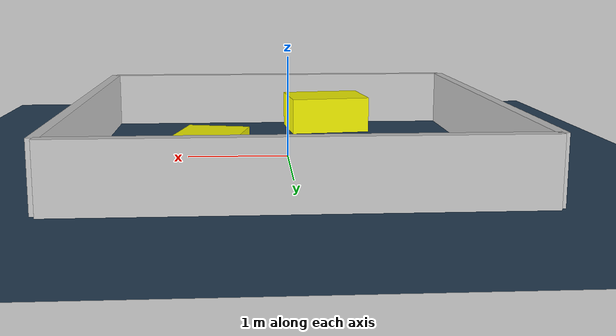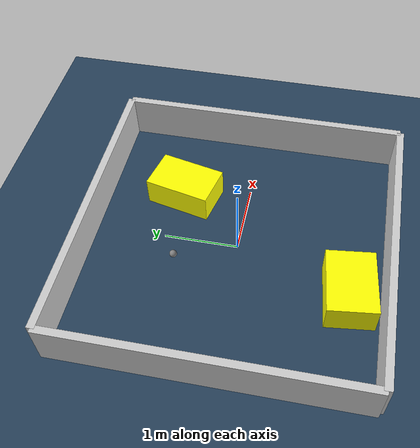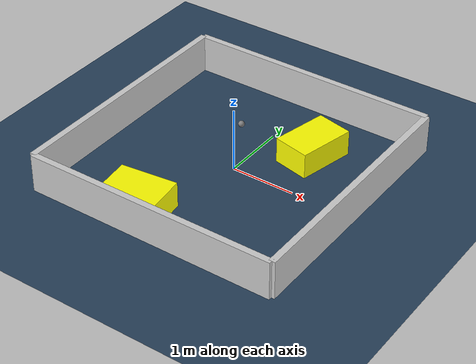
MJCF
<?xml version="1.0" ?>
<mujoco model="generated_environment">
  <option timestep="0.01" integrator="RK4" cone="elliptic"/>
  <default>
    <geom density="1"/>
  </default>
  <asset>
    <texture builtin="gradient" height="3072" rgb1="0.3 0.5 0.7" rgb2="0 0 0" type="skybox" width="512"/>
    <texture builtin="checker" height="300" mark="edge" markrgb="0.8 0.8 0.8" name="groundplane" rgb1="0.2 0.3 0.4" rgb2="0.1 0.2 0.3" type="2d" width="300"/>
    <material name="groundplane" reflectance="0.2" texrepeat="5 5" texture="groundplane" texuniform="true"/>
    <material name="robot" rgba="0.0 1.0 0.0 1"/>
  </asset>
  <worldbody>
    <light dir="0 0 -1" directional="true" pos="0 0 1.5"/>
    <geom condim="4" friction="1.0 0.005 0.001" material="groundplane" name="floor" size="0 0 0.05" type="plane"/>
    <body name="walls">
      <geom name="wall_1" condim="4" pos="-2.0 0.0 0.3" rgba="0.800000011920929 0.800000011920929 0.800000011920929 1.0" size="0.05 2.0 0.3" type="box"/>
      <geom name="wall_2" condim="4" pos="2.0 0.0 0.3" rgba="0.800000011920929 0.800000011920929 0.800000011920929 1.0" size="0.05 2.0 0.3" type="box"/>
      <geom name="wall_3" condim="4" pos="0.0 -2.0 0.3" rgba="0.800000011920929 0.800000011920929 0.800000011920929 1.0" size="2.0 0.05 0.3" type="box"/>
      <geom name="wall_4" condim="4" pos="0.0 2.0 0.3" rgba="0.800000011920929 0.800000011920929 0.800000011920929 1.0" size="2.0 0.05 0.3" type="box"/>
    </body>
    <body name="robot">
      <joint name="joint_x" type="slide" pos="0 0 0" axis="1 0 0"/>
      <joint name="joint_y" type="slide" pos="0 0 0" axis="0 1 0"/>
      <geom name="robot" type="sphere" pos="-0.41039216198136774 0.776501357173133 0.2" size="0.05" mass="5." friction="1.0 0.005 0.0001" condim="4"/>
      <site name="sensor_ball"/>
    </body>
    <body name="obstacle_1_movable">
      <geom name="obstacle_1_movable" condim="4" pos="-0.5347009544515782 -1.5323409124435943 0.2" euler="0 0 276.5595974083464" friction="1.0 0.005 0.001" rgba="1 1 0 1" size="0.3205188519145338 0.44801745038346275 0.2" type="box" mass="0.1"/>
      <joint type="free"/>
    </body>
    <body name="obstacle_2_movable">
      <geom name="obstacle_2_movable" condim="4" pos="0.7658064904760136 0.8961313764615777 0.2" euler="0 0 77.53623296022036" friction="1.0 0.005 0.001" rgba="1 1 0 1" size="0.4506387995199637 0.28867294587067666 0.2" type="box" mass="0.1"/>
      <joint type="free"/>
    </body>
  </worldbody>
  <actuator>
    <motor name="actuator_x" joint="joint_x" gear="1" ctrlrange="-1 1"/>
    <motor name="actuator_y" joint="joint_y" gear="1" ctrlrange="-1 1"/>
  </actuator>
</mujoco>
